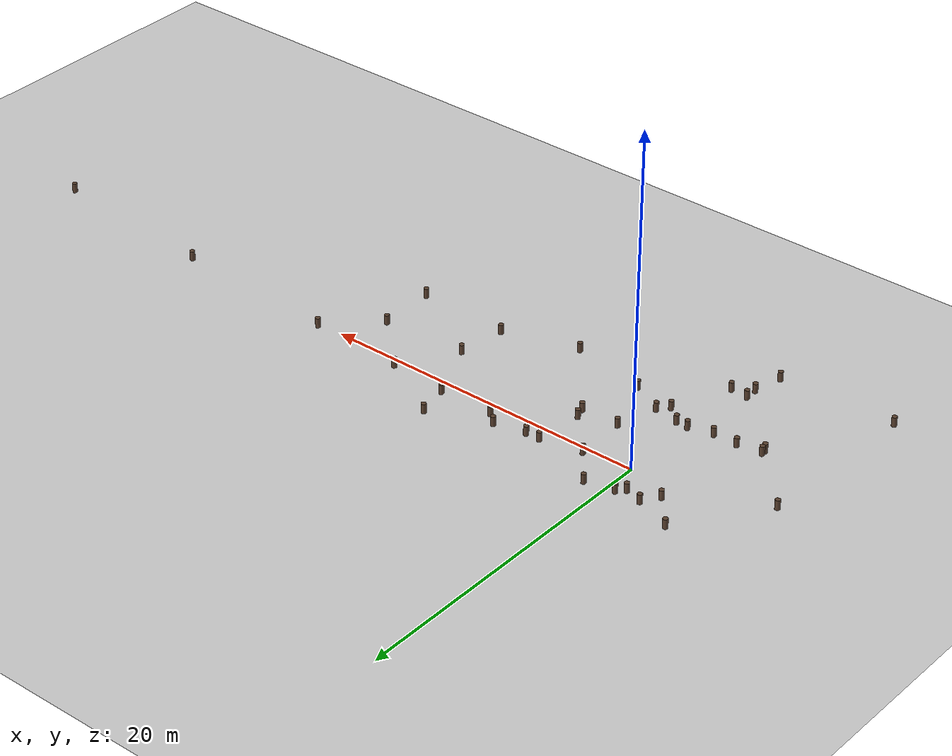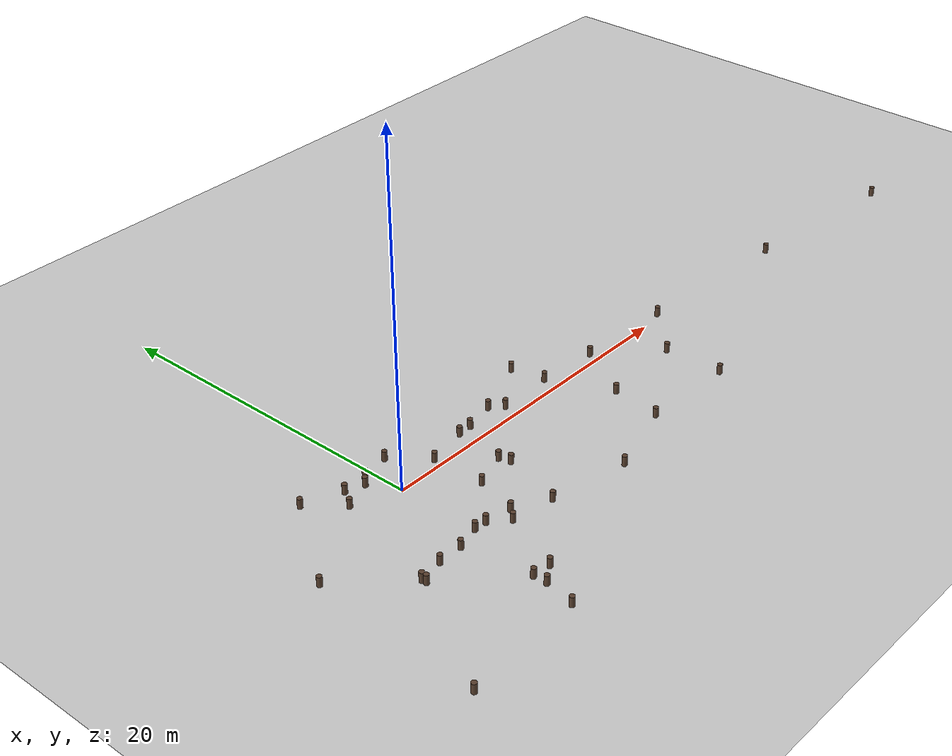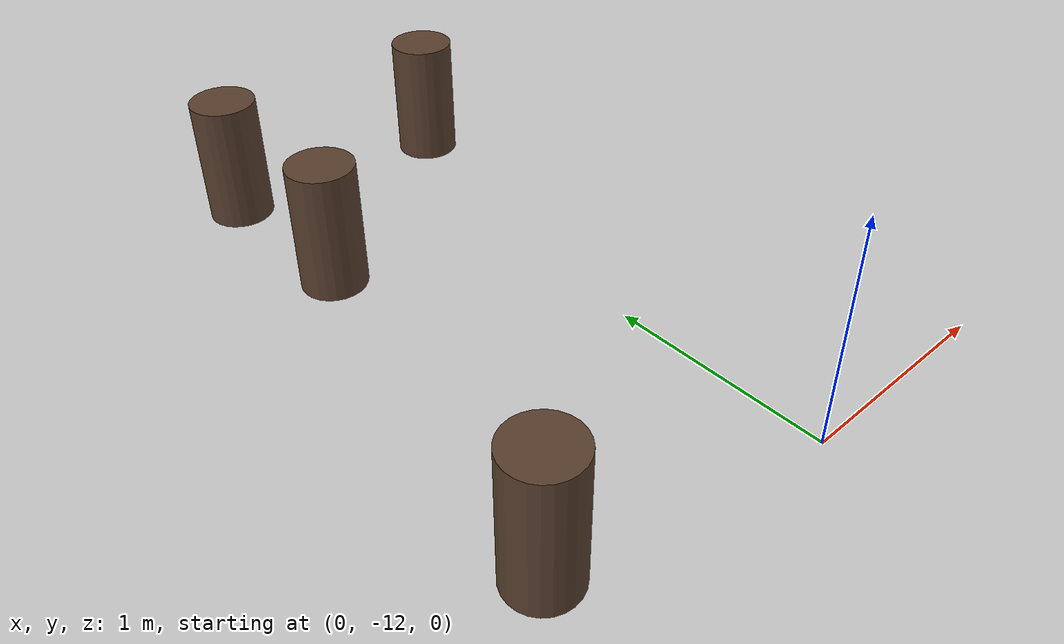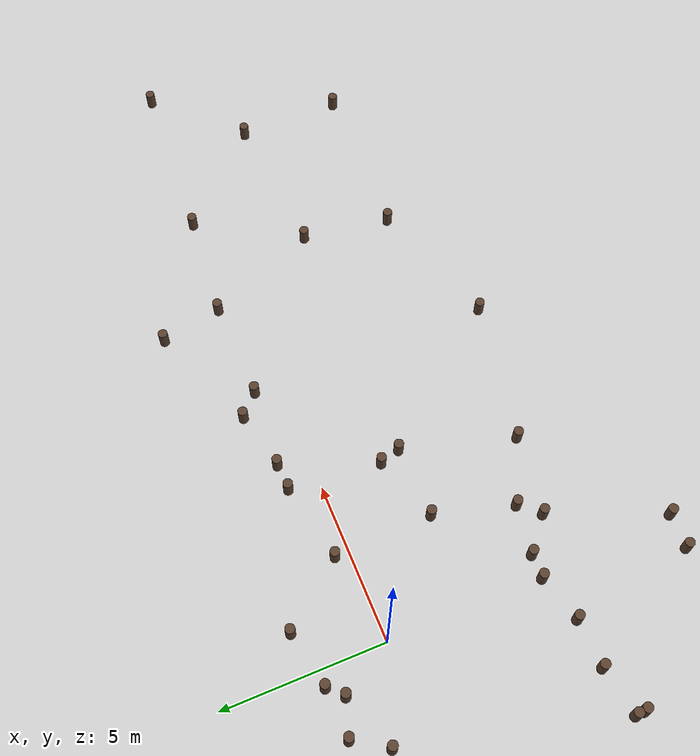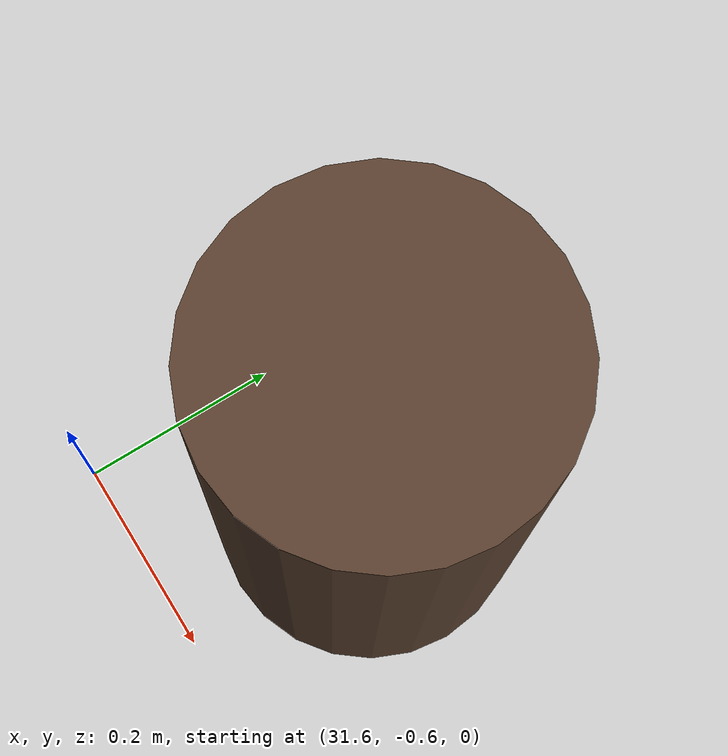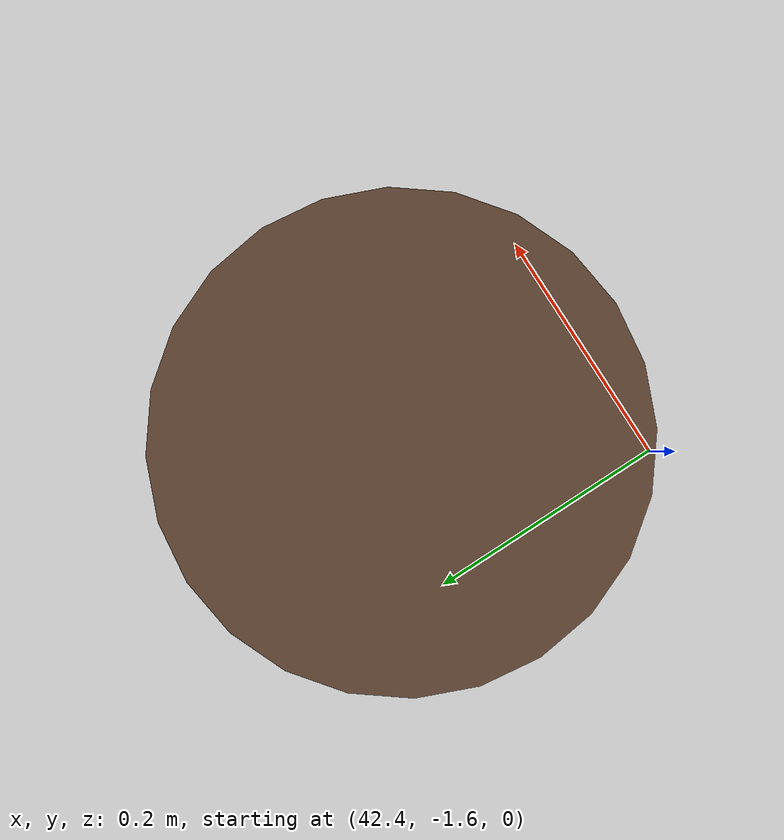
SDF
<?xml version="1.0"?>
<sdf version="1.6">
  <world name="orchard_world">
    <include>
      <uri>model://sun</uri>
    </include>

    <include>
      <uri>model://ground_plane</uri>
    </include>

    <!-- Trees: 40 includes of model://tree_trunk -->
    <include>
      <uri>model://tree_trunk</uri>
      <name>tree_0000</name>
      <pose>-8.183044 -12.058975 0 0 0 0</pose>
    </include>
    <include>
      <uri>model://tree_trunk</uri>
      <name>tree_0001</name>
      <pose>-1.161256 -11.741567 0 0 0 0</pose>
    </include>
    <include>
      <uri>model://tree_trunk</uri>
      <name>tree_0002</name>
      <pose>-0.774343 -9.950080 0 0 0 0</pose>
    </include>
    <include>
      <uri>model://tree_trunk</uri>
      <name>tree_0003</name>
      <pose>0.281590 -9.247587 0 0 0 0</pose>
    </include>
    <include>
      <uri>model://tree_trunk</uri>
      <name>tree_0004</name>
      <pose>-0.792176 -9.154423 0 0 0 0</pose>
    </include>
    <include>
      <uri>model://tree_trunk</uri>
      <name>tree_0005</name>
      <pose>8.855019 -7.071428 0 0 0 0</pose>
    </include>
    <include>
      <uri>model://tree_trunk</uri>
      <name>tree_0006</name>
      <pose>4.237848 -6.162395 0 0 0 0</pose>
    </include>
    <include>
      <uri>model://tree_trunk</uri>
      <name>tree_0007</name>
      <pose>18.890516 -5.914533 0 0 0 0</pose>
    </include>
    <include>
      <uri>model://tree_trunk</uri>
      <name>tree_0008</name>
      <pose>1.712510 -5.750753 0 0 0 0</pose>
    </include>
    <include>
      <uri>model://tree_trunk</uri>
      <name>tree_0009</name>
      <pose>13.316146 -5.713874 0 0 0 0</pose>
    </include>
    <include>
      <uri>model://tree_trunk</uri>
      <name>tree_0010</name>
      <pose>-4.357759 -5.709574 0 0 0 0</pose>
    </include>
    <include>
      <uri>model://tree_trunk</uri>
      <name>tree_0011</name>
      <pose>-4.372673 -5.429706 0 0 0 0</pose>
    </include>
    <include>
      <uri>model://tree_trunk</uri>
      <name>tree_0012</name>
      <pose>-2.910307 -5.214052 0 0 0 0</pose>
    </include>
    <include>
      <uri>model://tree_trunk</uri>
      <name>tree_0013</name>
      <pose>-1.453262 -5.210714 0 0 0 0</pose>
    </include>
    <include>
      <uri>model://tree_trunk</uri>
      <name>tree_0014</name>
      <pose>2.254125 -5.145391 0 0 0 0</pose>
    </include>
    <include>
      <uri>model://tree_trunk</uri>
      <name>tree_0015</name>
      <pose>0.721153 -4.881333 0 0 0 0</pose>
    </include>
    <include>
      <uri>model://tree_trunk</uri>
      <name>tree_0016</name>
      <pose>-0.020674 -4.834365 0 0 0 0</pose>
    </include>
    <include>
      <uri>model://tree_trunk</uri>
      <name>tree_0017</name>
      <pose>13.696857 -2.787202 0 0 0 0</pose>
    </include>
    <include>
      <uri>model://tree_trunk</uri>
      <name>tree_0018</name>
      <pose>2.934191 -2.661839 0 0 0 0</pose>
    </include>
    <include>
      <uri>model://tree_trunk</uri>
      <name>tree_0019</name>
      <pose>5.229920 -2.612130 0 0 0 0</pose>
    </include>
    <include>
      <uri>model://tree_trunk</uri>
      <name>tree_0020</name>
      <pose>18.778845 -2.428738 0 0 0 0</pose>
    </include>
    <include>
      <uri>model://tree_trunk</uri>
      <name>tree_0021</name>
      <pose>-7.668493 -2.067065 0 0 0 0</pose>
    </include>
    <include>
      <uri>model://tree_trunk</uri>
      <name>tree_0022</name>
      <pose>5.024608 -1.952262 0 0 0 0</pose>
    </include>
    <include>
      <uri>model://tree_trunk</uri>
      <name>tree_0023</name>
      <pose>42.515636 -1.434610 0 0 0 0</pose>
    </include>
    <include>
      <uri>model://tree_trunk</uri>
      <name>tree_0024</name>
      <pose>31.774174 -0.381630 0 0 0 0</pose>
    </include>
    <include>
      <uri>model://tree_trunk</uri>
      <name>tree_0025</name>
      <pose>21.510214 0.253343 0 0 0 0</pose>
    </include>
    <include>
      <uri>model://tree_trunk</uri>
      <name>tree_0026</name>
      <pose>2.826103 0.446360 0 0 0 0</pose>
    </include>
    <include>
      <uri>model://tree_trunk</uri>
      <name>tree_0027</name>
      <pose>15.656084 0.563711 0 0 0 0</pose>
    </include>
    <include>
      <uri>model://tree_trunk</uri>
      <name>tree_0028</name>
      <pose>8.745132 0.794848 0 0 0 0</pose>
    </include>
    <include>
      <uri>model://tree_trunk</uri>
      <name>tree_0029</name>
      <pose>12.063612 0.874132 0 0 0 0</pose>
    </include>
    <include>
      <uri>model://tree_trunk</uri>
      <name>tree_0030</name>
      <pose>5.299452 0.965223 0 0 0 0</pose>
    </include>
    <include>
      <uri>model://tree_trunk</uri>
      <name>tree_0031</name>
      <pose>6.156621 0.996610 0 0 0 0</pose>
    </include>
    <include>
      <uri>model://tree_trunk</uri>
      <name>tree_0032</name>
      <pose>-2.664272 1.008411 0 0 0 0</pose>
    </include>
    <include>
      <uri>model://tree_trunk</uri>
      <name>tree_0033</name>
      <pose>8.046822 1.415157 0 0 0 0</pose>
    </include>
    <include>
      <uri>model://tree_trunk</uri>
      <name>tree_0034</name>
      <pose>-0.945818 1.644140 0 0 0 0</pose>
    </include>
    <include>
      <uri>model://tree_trunk</uri>
      <name>tree_0035</name>
      <pose>-2.024850 1.996242 0 0 0 0</pose>
    </include>
    <include>
      <uri>model://tree_trunk</uri>
      <name>tree_0036</name>
      <pose>-0.517072 2.078618 0 0 0 0</pose>
    </include>
    <include>
      <uri>model://tree_trunk</uri>
      <name>tree_0037</name>
      <pose>1.234308 2.431016 0 0 0 0</pose>
    </include>
    <include>
      <uri>model://tree_trunk</uri>
      <name>tree_0038</name>
      <pose>-4.257694 2.843739 0 0 0 0</pose>
    </include>
    <include>
      <uri>model://tree_trunk</uri>
      <name>tree_0039</name>
      <pose>11.614307 2.864158 0 0 0 0</pose>
    </include>
  </world>
</sdf>

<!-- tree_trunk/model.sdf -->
<sdf version="1.6">
  <model name="tree_trunk">
    <static>true</static>
    <link name="link">
      <collision name="trunk_collision">
        <pose>0 0 0.30 0 0 0</pose>
        <geometry>
          <cylinder>
            <radius>0.15</radius>
            <length>0.60</length>
          </cylinder>
        </geometry>
      </collision>
      <visual name="trunk_visual">
        <pose>0 0 0.30 0 0 0</pose>
        <geometry>
          <cylinder>
            <radius>0.15</radius>
            <length>0.60</length>
          </cylinder>
        </geometry>
        <material>
          <ambient>0.25 0.18 0.12 1</ambient>
          <diffuse>0.35 0.25 0.18 1</diffuse>
        </material>
      </visual>
    </link>
  </model>
</sdf>
